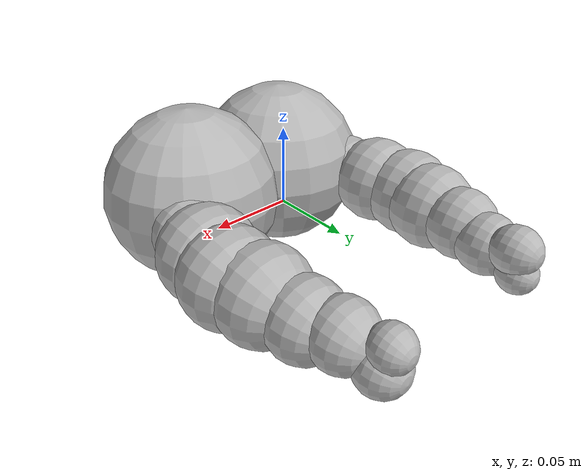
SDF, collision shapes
<?xml version="1.0"?>
<!-- Taken from nepfaff's repo scene_gen_policy -->
<sdf version="1.7">
  <model name="Schunk_Gripper">
    <link name="body">
      <pose>0 -0.049133 0 0 0 0</pose>
      <inertial>
        <mass>0.988882</mass>
        <inertia>
          <ixx>0.162992</ixx>
          <ixy>0</ixy>
          <ixz>0</ixz>
          <iyy>0.162992</iyy>
          <iyz>0</iyz>
          <izz>0.164814</izz>
        </inertia>
      </inertial>
      <visual name="visual">
        <geometry>
          <mesh>
            <scale>1 1 1</scale>
            <uri>package://drake_models/wsg_50_description/meshes/wsg_body.gltf</uri>
          </mesh>
        </geometry>
      </visual><collision name="sphere1">
  <pose>-0.0365 0 0 0 0 0</pose>
  <geometry>
    <sphere>
      <radius>0.0572</radius>
    </sphere>
  </geometry>
</collision>

<collision name="sphere2">
  <pose>0.0365 0 0 0 0 0</pose>
  <geometry>
    <sphere>
      <radius>0.0572</radius>
    </sphere>
  </geometry>
</collision>
    </link>
    <frame name="body_frame">
      <pose relative_to="body"/>
</frame><link name="left_finger">
  <pose>-0.05 0.014 -0.013 1.57 3.14 0</pose>
  <inertial>
    <mass>0.05</mass>
    <inertia>
      <ixx>0.16</ixx>
      <ixy>0</ixy>
      <ixz>0</ixz>
      <iyy>0.16</iyy>
      <iyz>0</iyz>
      <izz>0.16</izz>
    </inertia>
  </inertial>
  <visual name="visual">
    <geometry>
      <mesh>
        <scale>1 1 1</scale>
        <uri>package://combining_kinematics/models/wsg_finray/meshes/one_piece_wide_grasp_finray_finger.obj</uri>
      </mesh>
    </geometry>
  </visual>

  <!-- Sphere collisions -->

  <collision name="sphere2">
    <pose>0.01357295 -0.01379195 0.0210696 0 0 0</pose>
    <geometry>
      <sphere>
        <radius>0.023293</radius>
      </sphere>
    </geometry>
  </collision>

  <collision name="sphere3">
    <pose>0.01881295 -0.01257795 -0.0039634 0 0 0</pose>
    <geometry>
      <sphere>
        <radius>0.028732</radius>
      </sphere>
    </geometry>
  </collision>

  <collision name="sphere4">
    <pose>0.02180995 -0.01214495 -0.0287674 0 0 0</pose>
    <geometry>
      <sphere>
        <radius>0.028329</radius>
      </sphere>
    </geometry>
  </collision>

  <collision name="sphere5">
    <pose>0.01726095 -0.01233395 -0.0497814 0 0 0</pose>
    <geometry>
      <sphere>
        <radius>0.027105</radius>
      </sphere>
    </geometry>
  </collision>

  <collision name="sphere6">
    <pose>0.01254595 -0.01355295 -0.0750464 0 0 0</pose>
    <geometry>
      <sphere>
        <radius>0.021853</radius>
      </sphere>
    </geometry>
  </collision>

  <collision name="sphere7">
    <pose>0.00791795 -0.01139595 -0.0952654 0 0 0</pose>
    <geometry>
      <sphere>
        <radius>0.018393</radius>
      </sphere>
    </geometry>
  </collision>

  <collision name="sphere8">
    <pose>0.00357195 -0.01847595 -0.1142184 0 0 0</pose>
    <geometry>
      <sphere>
        <radius>0.014293</radius>
      </sphere>
    </geometry>
  </collision>

  <collision name="sphere9">
    <pose>0.00260195 -0.00590495 -0.1177174 0 0 0</pose>
    <geometry>
      <sphere>
        <radius>0.011584</radius>
      </sphere>
    </geometry>
  </collision>
</link>
    <link name="right_finger">
      <pose>0.05 0.014 0.013 1.57 0 0</pose>
      <inertial>
        <mass>0.05</mass>
        <inertia>
          <ixx>0.16</ixx>
          <ixy>0</ixy>
          <ixz>0</ixz>
          <iyy>0.16</iyy>
          <iyz>0</iyz>
          <izz>0.16</izz>
        </inertia>
      </inertial>
      <visual name="visual">
        <geometry>
          <mesh>
            <scale>1 1 1</scale>
            <uri>package://combining_kinematics/models/wsg_finray/meshes/one_piece_wide_grasp_finray_finger.obj</uri>
          </mesh>
        </geometry>
      </visual>

  <!-- Sphere collisions -->

  <collision name="sphere2">
    <pose>0.01357295 -0.01379195 0.0210696 0 0 0</pose>
    <geometry>
      <sphere>
        <radius>0.023293</radius>
      </sphere>
    </geometry>
  </collision>

  <collision name="sphere3">
    <pose>0.01881295 -0.01257795 -0.0039634 0 0 0</pose>
    <geometry>
      <sphere>
        <radius>0.028732</radius>
      </sphere>
    </geometry>
  </collision>

  <collision name="sphere4">
    <pose>0.02180995 -0.01214495 -0.0287674 0 0 0</pose>
    <geometry>
      <sphere>
        <radius>0.028329</radius>
      </sphere>
    </geometry>
  </collision>

  <collision name="sphere5">
    <pose>0.01726095 -0.01233395 -0.0497814 0 0 0</pose>
    <geometry>
      <sphere>
        <radius>0.027105</radius>
      </sphere>
    </geometry>
  </collision>

  <collision name="sphere6">
    <pose>0.01254595 -0.01355295 -0.0750464 0 0 0</pose>
    <geometry>
      <sphere>
        <radius>0.021853</radius>
      </sphere>
    </geometry>
  </collision>

  <collision name="sphere7">
    <pose>0.00791795 -0.01139595 -0.0952654 0 0 0</pose>
    <geometry>
      <sphere>
        <radius>0.018393</radius>
      </sphere>
    </geometry>
  </collision>

  <collision name="sphere8">
    <pose>0.00357195 -0.01847595 -0.1142184 0 0 0</pose>
    <geometry>
      <sphere>
        <radius>0.014293</radius>
      </sphere>
    </geometry>
  </collision>

  <collision name="sphere9">
    <pose>0.00260195 -0.00590495 -0.1177174 0 0 0</pose>
    <geometry>
      <sphere>
        <radius>0.011584</radius>
      </sphere>
    </geometry>
  </collision>
    </link>
    <joint name="left_finger_sliding_joint" type="fixed">
      <parent>body</parent>
      <child>left_finger</child>
    </joint>
    <joint name="right_finger_sliding_joint" type="fixed">
      <parent>body</parent>
      <child>right_finger</child>
    </joint>
    <static>0</static>
  </model>
</sdf>
